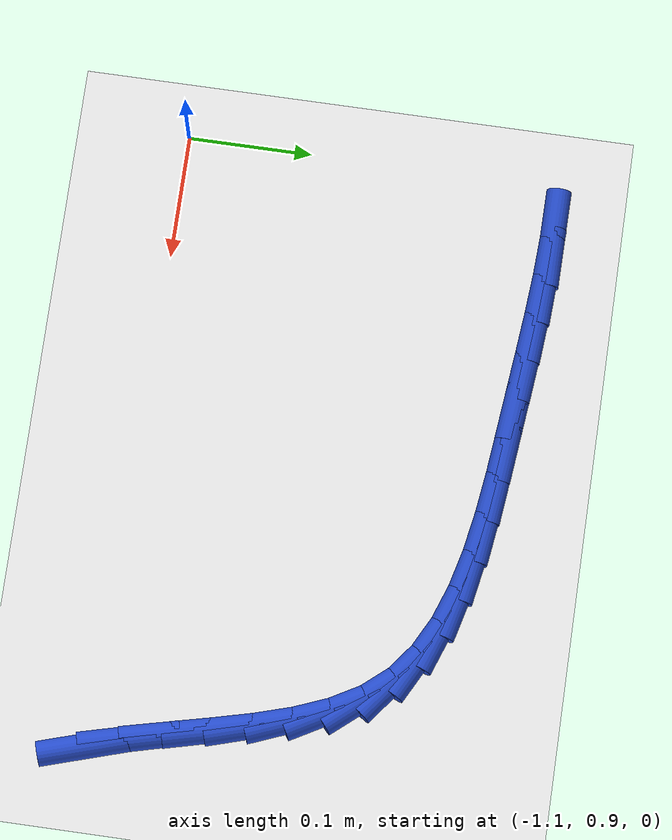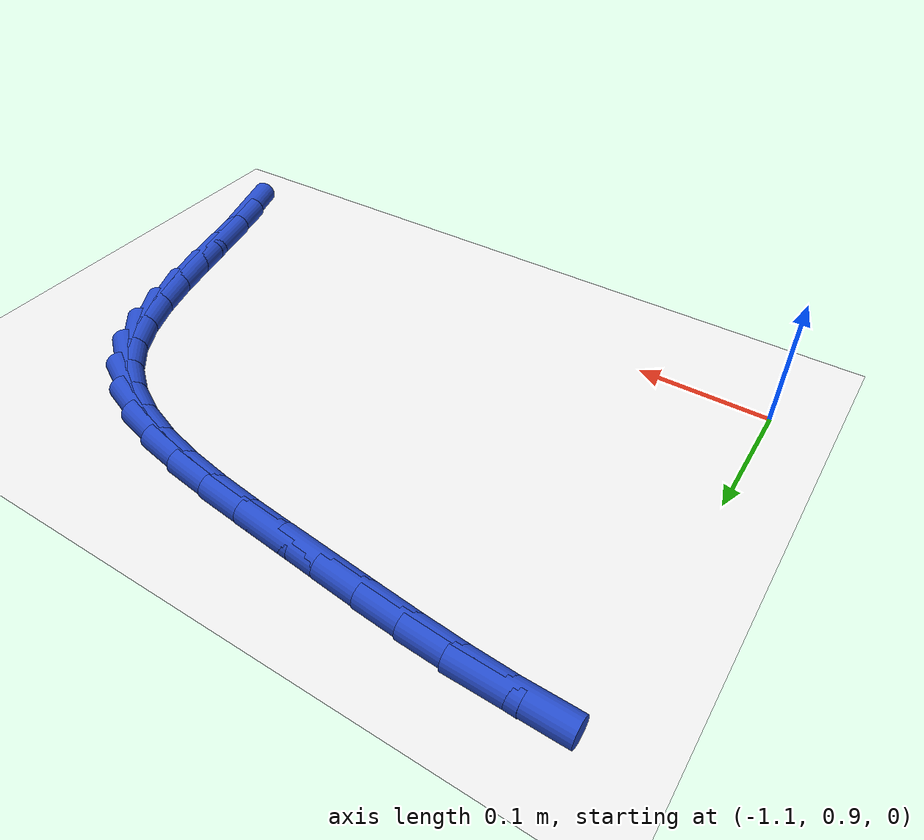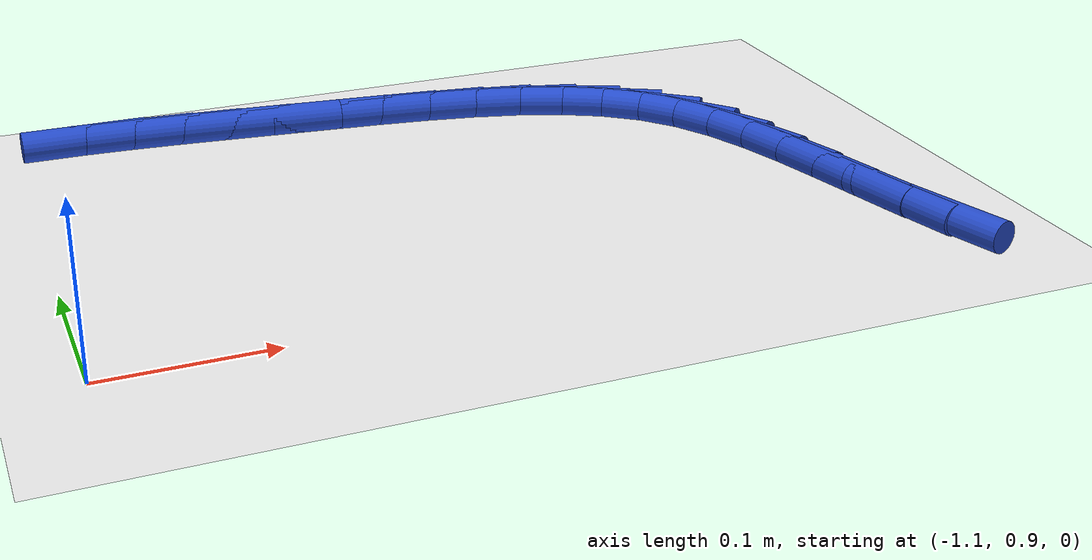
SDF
<sdf version="1.6">
 <world name="default">
  <model name="ground_plane">
   <static>1</static>
   <link name="link">
    <collision name="collision">
     <geometry><plane><normal>0 0 1</normal><size>100 100</size></plane></geometry>
     <surface><friction><ode><mu>100</mu><mu2>50</mu2></ode></friction></surface>
    </collision>
    <visual name="visual">
     <cast_shadows>0</cast_shadows>
     <geometry><plane><normal>0 0 1</normal><size>100 100</size></plane></geometry>
     <material>
      <script><uri>file://media/materials/scripts/gazebo.material</uri><name>Gazebo/WhiteGlow</name></script>
     </material>
    </visual>
   </link>
  </model>
  <model name="line">
   <link name="link_39">
    <pose>-0.6009676216913108 0.8960652856467695 0.01 0 1.57 -1.2662276992774717</pose>
    <collision name="collision">
     <geometry><cylinder><radius>0.01</radius><length>0.08</length></cylinder></geometry>
    </collision>
    <visual name="visual">
     <material>
      <script><name>Gazebo/Blue</name><uri>file://media/materials/scripts/gazebo.material</uri></script>
     </material>
     <geometry><cylinder><radius>0.01</radius><length>0.08</length></cylinder></geometry>
    </visual>
   </link>
   <link name="link_40">
    <pose>-0.6104817434908949 0.9263313811386586 0.01 0 1.57 -1.3170803648951959</pose>
    <collision name="collision">
     <geometry><cylinder><radius>0.01</radius><length>0.08</length></cylinder></geometry>
    </collision>
    <visual name="visual">
     <material>
      <script><name>Gazebo/Blue</name><uri>file://media/materials/scripts/gazebo.material</uri></script>
     </material>
     <geometry><cylinder><radius>0.01</radius><length>0.08</length></cylinder></geometry>
    </visual>
   </link>
   <link name="link_41">
    <pose>-0.6186400243481444 0.95779361372992 0.01 0 1.57 -1.3349281189691748</pose>
    <collision name="collision">
     <geometry><cylinder><radius>0.01</radius><length>0.08</length></cylinder></geometry>
    </collision>
    <visual name="visual">
     <material>
      <script><name>Gazebo/Blue</name><uri>file://media/materials/scripts/gazebo.material</uri></script>
     </material>
     <geometry><cylinder><radius>0.01</radius><length>0.08</length></cylinder></geometry>
    </visual>
   </link>
   <link name="link_42">
    <pose>-0.6262877865044214 0.9896139624188824 0.01 0 1.57 -1.3213944151721413</pose>
    <collision name="collision">
     <geometry><cylinder><radius>0.01</radius><length>0.08</length></cylinder></geometry>
    </collision>
    <visual name="visual">
     <material>
      <script><name>Gazebo/Blue</name><uri>file://media/materials/scripts/gazebo.material</uri></script>
     </material>
     <geometry><cylinder><radius>0.01</radius><length>0.08</length></cylinder></geometry>
    </visual>
   </link>
   <link name="link_43">
    <pose>-0.6342703522010881 1.020954406203875 0.01 0 1.57 -1.2745812585451735</pose>
    <collision name="collision">
     <geometry><cylinder><radius>0.01</radius><length>0.08</length></cylinder></geometry>
    </collision>
    <visual name="visual">
     <material>
      <script><name>Gazebo/Blue</name><uri>file://media/materials/scripts/gazebo.material</uri></script>
     </material>
     <geometry><cylinder><radius>0.01</radius><length>0.08</length></cylinder></geometry>
    </visual>
   </link>
   <link name="link_44">
    <pose>-0.6434330436795066 1.0509769240832258 0.01 0 1.57 -1.1890064386980166</pose>
    <collision name="collision">
     <geometry><cylinder><radius>0.01</radius><length>0.08</length></cylinder></geometry>
    </collision>
    <visual name="visual">
     <material>
      <script><name>Gazebo/Blue</name><uri>file://media/materials/scripts/gazebo.material</uri></script>
     </material>
     <geometry><cylinder><radius>0.01</radius><length>0.08</length></cylinder></geometry>
    </visual>
   </link>
   <link name="link_45">
    <pose>-0.6546211831810391 1.0788434950552643 0.01 0 1.57 -1.056330328687823</pose>
    <collision name="collision">
     <geometry><cylinder><radius>0.01</radius><length>0.08</length></cylinder></geometry>
    </collision>
    <visual name="visual">
     <material>
      <script><name>Gazebo/Blue</name><uri>file://media/materials/scripts/gazebo.material</uri></script>
     </material>
     <geometry><cylinder><radius>0.01</radius><length>0.08</length></cylinder></geometry>
    </visual>
   </link>
   <link name="link_46">
    <pose>-0.6686800929470476 1.103716098118319 0.01 0 1.57 -0.8696956677434259</pose>
    <collision name="collision">
     <geometry><cylinder><radius>0.01</radius><length>0.08</length></cylinder></geometry>
    </collision>
    <visual name="visual">
     <material>
      <script><name>Gazebo/Blue</name><uri>file://media/materials/scripts/gazebo.material</uri></script>
     </material>
     <geometry><cylinder><radius>0.01</radius><length>0.08</length></cylinder></geometry>
    </visual>
   </link>
   <link name="link_47">
    <pose>-0.686447901957074 1.1247637239685921 0.01 0 1.57 -0.6592602692911168</pose>
    <collision name="collision">
     <geometry><cylinder><radius>0.01</radius><length>0.08</length></cylinder></geometry>
    </collision>
    <visual name="visual">
     <material>
      <script><name>Gazebo/Blue</name><uri>file://media/materials/scripts/gazebo.material</uri></script>
     </material>
     <geometry><cylinder><radius>0.01</radius><length>0.08</length></cylinder></geometry>
    </visual>
   </link>
   <link name="link_48">
    <pose>-0.7082480272638756 1.1416570834693478 0.01 0 1.57 -0.4819672961127319</pose>
    <collision name="collision">
     <geometry><cylinder><radius>0.01</radius><length>0.08</length></cylinder></geometry>
    </collision>
    <visual name="visual">
     <material>
      <script><name>Gazebo/Blue</name><uri>file://media/materials/scripts/gazebo.material</uri></script>
     </material>
     <geometry><cylinder><radius>0.01</radius><length>0.08</length></cylinder></geometry>
    </visual>
   </link>
   <link name="link_49">
    <pose>-0.7335542214095824 1.1548951057512666 0.01 0 1.57 -0.34570527650419036</pose>
    <collision name="collision">
     <geometry><cylinder><radius>0.01</radius><length>0.08</length></cylinder></geometry>
    </collision>
    <visual name="visual">
     <material>
      <script><name>Gazebo/Blue</name><uri>file://media/materials/scripts/gazebo.material</uri></script>
     </material>
     <geometry><cylinder><radius>0.01</radius><length>0.08</length></cylinder></geometry>
    </visual>
   </link>
   <link name="link_50">
    <pose>-0.7617607310012315 1.1650542190837923 0.01 0 1.57 -0.24594625557700184</pose>
    <collision name="collision">
     <geometry><cylinder><radius>0.01</radius><length>0.08</length></cylinder></geometry>
    </collision>
    <visual name="visual">
     <material>
      <script><name>Gazebo/Blue</name><uri>file://media/materials/scripts/gazebo.material</uri></script>
     </material>
     <geometry><cylinder><radius>0.01</radius><length>0.08</length></cylinder></geometry>
    </visual>
   </link>
   <link name="link_51">
    <pose>-0.7922618026458601 1.1727108517363691 0.01 0 1.57 -0.17617856483725677</pose>
    <collision name="collision">
     <geometry><cylinder><radius>0.01</radius><length>0.08</length></cylinder></geometry>
    </collision>
    <visual name="visual">
     <material>
      <script><name>Gazebo/Blue</name><uri>file://media/materials/scripts/gazebo.material</uri></script>
     </material>
     <geometry><cylinder><radius>0.01</radius><length>0.08</length></cylinder></geometry>
    </visual>
   </link>
   <link name="link_52">
    <pose>-0.8244516829505055 1.1784414319784413 0.01 0 1.57 -0.1309142001120842</pose>
    <collision name="collision">
     <geometry><cylinder><radius>0.01</radius><length>0.08</length></cylinder></geometry>
    </collision>
    <visual name="visual">
     <material>
      <script><name>Gazebo/Blue</name><uri>file://media/materials/scripts/gazebo.material</uri></script>
     </material>
     <geometry><cylinder><radius>0.01</radius><length>0.08</length></cylinder></geometry>
    </visual>
   </link>
   <link name="link_53">
    <pose>-0.857724618522204 1.1828223880794526 0.01 0 1.57 -0.10649145984250988</pose>
    <collision name="collision">
     <geometry><cylinder><radius>0.01</radius><length>0.08</length></cylinder></geometry>
    </collision>
    <visual name="visual">
     <material>
      <script><name>Gazebo/Blue</name><uri>file://media/materials/scripts/gazebo.material</uri></script>
     </material>
     <geometry><cylinder><radius>0.01</radius><length>0.08</length></cylinder></geometry>
    </visual>
   </link>
   <link name="link_54">
    <pose>-0.891474855967994 1.186430148308848 0.01 0 1.57 -0.10093901053864456</pose>
    <collision name="collision">
     <geometry><cylinder><radius>0.01</radius><length>0.08</length></cylinder></geometry>
    </collision>
    <visual name="visual">
     <material>
      <script><name>Gazebo/Blue</name><uri>file://media/materials/scripts/gazebo.material</uri></script>
     </material>
     <geometry><cylinder><radius>0.01</radius><length>0.08</length></cylinder></geometry>
    </visual>
   </link>
   <link name="link_55">
    <pose>-0.925100107111866 1.1898358221973588 0.01 0 1.57 -0.10344419947631227</pose>
    <collision name="collision">
     <geometry><cylinder><radius>0.01</radius><length>0.08</length></cylinder></geometry>
    </collision>
    <visual name="visual">
     <material>
      <script><name>Gazebo/Blue</name><uri>file://media/materials/scripts/gazebo.material</uri></script>
     </material>
     <geometry><cylinder><radius>0.01</radius><length>0.08</length></cylinder></geometry>
    </visual>
   </link>
   <link name="link_56">
    <pose>-0.9582174037894959 1.193273886432345 0.01 0 1.57 -0.09710016064013774</pose>
    <collision name="collision">
     <geometry><cylinder><radius>0.01</radius><length>0.08</length></cylinder></geometry>
    </collision>
    <visual name="visual">
     <material>
      <script><name>Gazebo/Blue</name><uri>file://media/materials/scripts/gazebo.material</uri></script>
     </material>
     <geometry><cylinder><radius>0.01</radius><length>0.08</length></cylinder></geometry>
    </visual>
   </link>
   <link name="link_57">
    <pose>-0.990790450337918 1.1964467123590379 0.01 0 1.57 -0.07986437645621547</pose>
    <collision name="collision">
     <geometry><cylinder><radius>0.01</radius><length>0.08</length></cylinder></geometry>
    </collision>
    <visual name="visual">
     <material>
      <script><name>Gazebo/Blue</name><uri>file://media/materials/scripts/gazebo.material</uri></script>
     </material>
     <geometry><cylinder><radius>0.01</radius><length>0.08</length></cylinder></geometry>
    </visual>
   </link>
   <link name="link_58">
    <pose>-1.0228135726522698 1.1990096704945503 0.01 0 1.57 -0.05107050131117894</pose>
    <collision name="collision">
     <geometry><cylinder><radius>0.01</radius><length>0.08</length></cylinder></geometry>
    </collision>
    <visual name="visual">
     <material>
      <script><name>Gazebo/Blue</name><uri>file://media/materials/scripts/gazebo.material</uri></script>
     </material>
     <geometry><cylinder><radius>0.01</radius><length>0.08</length></cylinder></geometry>
    </visual>
   </link>
   <link name="link_59">
    <pose>-1.0542810966276874 1.2006181313559934 0.01 0 1.57 -0.010008453322910638</pose>
    <collision name="collision">
     <geometry><cylinder><radius>0.01</radius><length>0.08</length></cylinder></geometry>
    </collision>
    <visual name="visual">
     <material>
      <script><name>Gazebo/Blue</name><uri>file://media/materials/scripts/gazebo.material</uri></script>
     </material>
     <geometry><cylinder><radius>0.01</radius><length>0.08</length></cylinder></geometry>
    </visual>
   </link>
  </model>
 </world>
</sdf>
